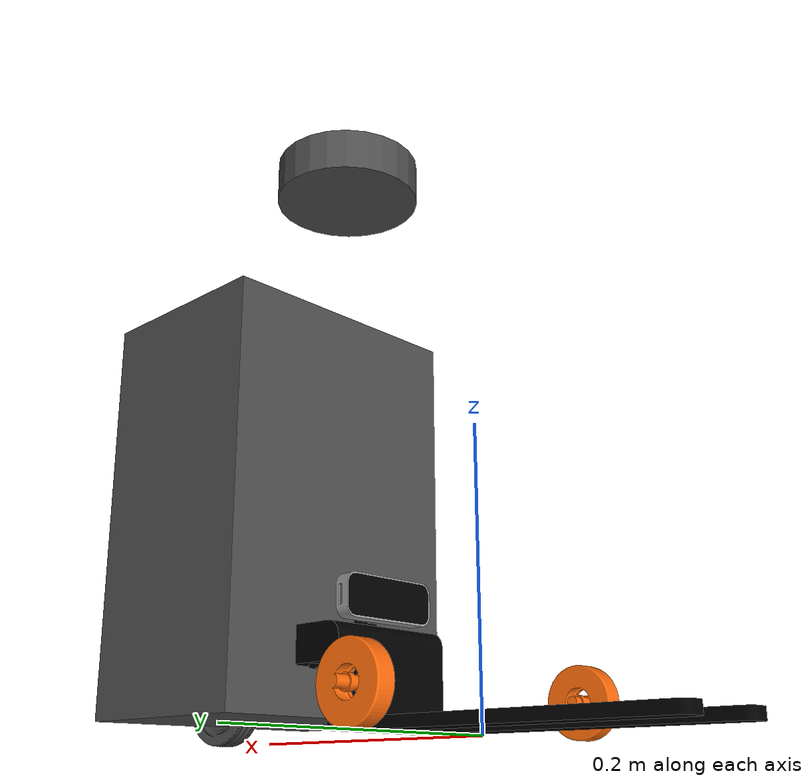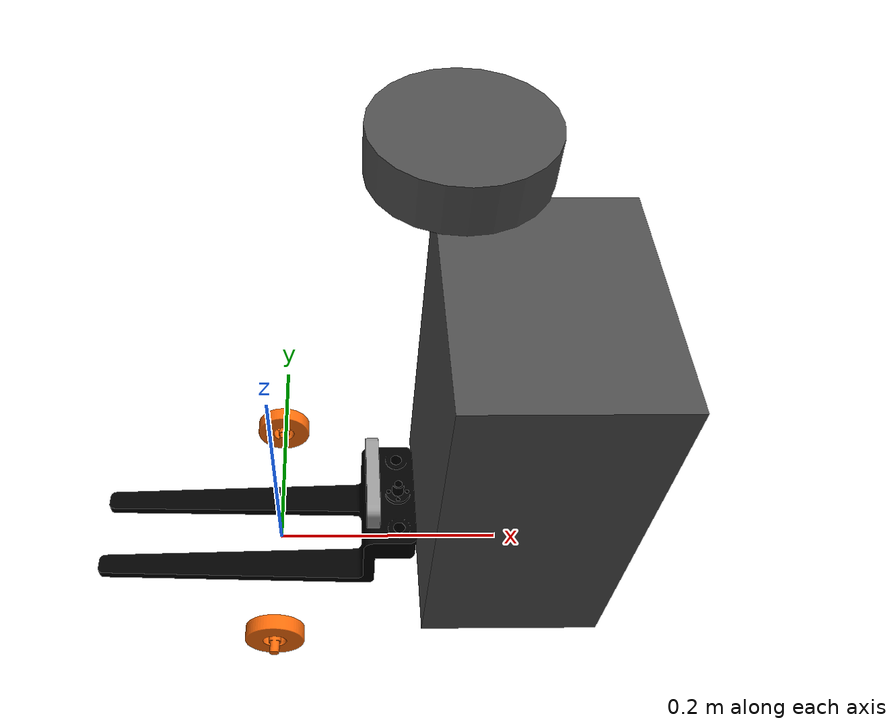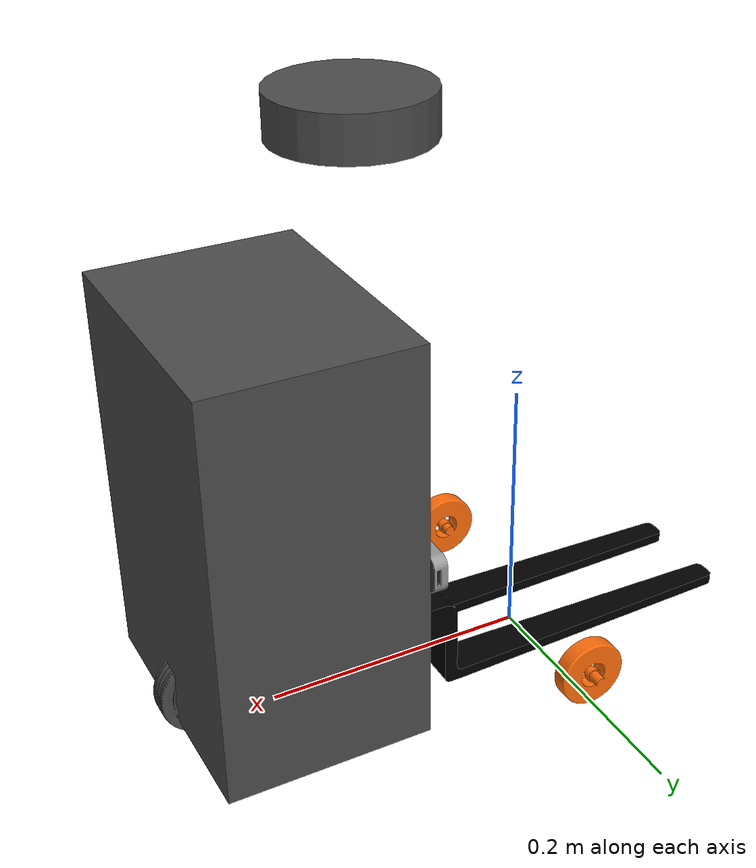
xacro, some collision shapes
<?xml version="1.0"?>

<robot xmlns:xacro="http://ros.org/wiki/xacro" name="dyno_forklift" >
  <xacro:arg name="use_ros_control_for_base" default="true"/>
  <xacro:arg name="base_variant" default="default"/>

  <xacro:include filename="../urdf/materials/materials.xacro"/>
  <xacro:include filename="../urdf/utils.urdf.xacro"/>
  <xacro:include filename="../urdf/plugins.gazebo.xacro"/>

  <!-- Set up definitions of parts of robot body -->
  <xacro:include filename="../urdf/base/forklift_base.urdf.xacro"/>
  <xacro:include filename="../urdf/sensors/lds_lfcd.urdf.xacro"/>
  <xacro:include filename="../urdf/sensors/leap_motion.urdf.xacro"/>
  <xacro:include filename="../urdf/sensors/vive_tracker.urdf.xacro"/>
  <xacro:include filename="../urdf/sensors/imu.urdf.xacro"/>

  <!-- Use macros to define the actual robot -->
  <base/>

  <!-- Laser Scanner -->
  <lds_lfcd name="base_scan" x_offset="0.11" y_offset="0" z_offset="0.41" yaw_offset="0" parent="base_link"/>

  <!-- Vive Tracker -->

  <!-- Leap Motion -->
  <leap_motion name="leap_motion" x_offset="-0.017" y_offset="0" z_offset="0.08" yaw_offset="${M_PI}" parent="fork_link"/>

  <!-- Imu -->
  <imu x_offset="0" y_offset="0" z_offset="0"/>

</robot>

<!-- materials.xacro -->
<robot>
  <material name="black">
      <color rgba="0.0 0.0 0.0 1.0"/>
  </material>

  <material name="dark">
    <color rgba="0.3 0.3 0.3 1.0"/>
  </material>
  <material name="light_black">
    <color rgba="0.4 0.4 0.4 1.0"/>
  </material>

  <material name="blue">
    <color rgba="0.0 0.0 0.8 1.0"/>
  </material>

  <material name="light_blue">
    <color rgba="0.3 0.3 0.8 1.0"/>
  </material>

  <material name="green">
    <color rgba="0.0 0.8 0.0 1.0"/>
  </material>

  <material name="grey">
    <color rgba="0.5 0.5 0.5 1.0"/>
  </material>

  <material name="orange">
    <color rgba="${255/255} ${108/255} ${10/255} 1.0"/>
  </material>

  <material name="brown">
    <color rgba="${222/255} ${207/255} ${195/255} 1.0"/>
  </material>

  <material name="red">
    <color rgba="0.8 0.0 0.0 1.0"/>
  </material>

  <material name="white">
    <color rgba="1.0 1.0 1.0 1.0"/>
  </material>

</robot>

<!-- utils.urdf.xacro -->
<robot xmlns:xacro="http://ros.org/wiki/xacro">

  <!-- Constants -->
  <xacro:property name="M_PI" value="3.1415926535897931"/>

  <!-- Inertia -->
  <xacro:macro name="cylinder_inertia" params="m r h">
    <inertia ixx="${m*(3*r*r+h*h)/12}" ixy="0" ixz="0" iyy="${m*(3*r*r+h*h)/12}" iyz="0" izz="${m*r*r/2}"/>
  </xacro:macro>

  <xacro:macro name="box_inertia" params="m x y z">
    <inertia ixx="${m*(y*y+z*z)/12}" ixy="0" ixz="0" iyy="${m*(z*z+x*x)/12}" iyz="0" izz="${m*(x*x+y*y)/12}"/>
  </xacro:macro>

  <xacro:macro name="simple_transmission" params="name interface" >
    <transmission name="${name}_trans">
      <type>transmission_interface/SimpleTransmission</type>
      <joint name="${name}">
        <hardwareInterface>hardware_interface/${interface}</hardwareInterface>
      </joint>
      <actuator name="${name}_motor">
        <mechanicalReduction>10</mechanicalReduction>
        <hardwareInterface>hardware_interface/${interface}</hardwareInterface>
      </actuator>
    </transmission>
  </xacro:macro>
</robot>

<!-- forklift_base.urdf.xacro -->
<!-- Dyno Magni base -->

<robot xmlns:xacro="http://ros.org/wiki/xacro">

  <xacro:include filename="forklift_base.gazebo.xacro"/>

  <xacro:include filename="../wheels/forklift/support_wheel.urdf.xacro"/>
  <xacro:include filename="../wheels/forklift/drive_wheel_assembly.urdf.xacro"/>

  <!-- Base -->
  <xacro:macro name="base">
    <link name="base_link">
      <visual>
        <origin xyz="0 0 0" rpy="0 0 0"/>
        <geometry>
          <mesh filename="package://dyno_description/meshes/bases/forklift_base.stl" scale="0.01 0.01 0.01"/>
        </geometry>
        <material name="dark"/>
      </visual>

      <collision>
        <origin xyz="0.2 0 0.14" rpy="0 0 0"/>
        <geometry>
          <box size="0.15 0.2 0.3"/>
        </geometry>
        <material name="orange"/>
      </collision>

      <!-- Set high weight and low intertia for gazebot simulation -->
      <inertial>
        <origin xyz="0.13 0 0" rpy="0 0 0"/>
        <mass value="10.0"/>
        <box_inertia m="0.1" x="0.3" y="0.25" z="0.1"/>
      </inertial>
    </link>

    <!-- Base footprint -->
    <link name="base_footprint"/>

    <joint name="base_footprint_joint" type="fixed">
      <origin xyz="0 0 0.025" rpy="0 0 0"/>
      <parent link="base_footprint"/>
      <child link="base_link"/>
    </joint>

    <!-- Fork -->
    <joint name="fork_joint" type="prismatic">
      <origin xyz="0.106 0 -0.013" rpy="0 0 0"/>
      <parent link="base_link"/>
      <child link="fork_link"/>
      <axis xyz="0 0 1"/>
      <limit effort="1000.0" lower="0" upper="1.0" velocity="0.05"/>
    </joint>

    <link name="fork_link">
      <visual>
        <origin xyz="0 0 0" rpy="0 0 ${M_PI}"/>
        <geometry>
          <mesh filename="package://dyno_description/meshes/bases/forklift_fork.stl" scale="0.01 0.01 0.01"/>
        </geometry>
        <material name="black"/>
      </visual>

      <collision>
        <origin xyz="-0.15 0 -0.004" rpy="0 0 0"/>
        <geometry>
          <box size="0.24 0.1 0.008"/>
        </geometry>
        <material name="orange"/>
      </collision>

      <inertial>
        <origin xyz="-0.16 0 0" rpy="0 0 0"/>
        <mass value="0.02"/>
        <box_inertia m="0.002" x="0.23" y="0.1" z="0.008"/>
      </inertial>
    </link>

    <xacro:if value="$(arg use_ros_control_for_base)">
      <xacro:simple_transmission name="fork_joint" interface="PositionJointInterface"/>
    </xacro:if>

    <!-- Macros -->
    <xacro:property name="support_wheel_separation" value="0.217"/>

    <support_wheel name="support_wheel_right" separation="${support_wheel_separation}" reflect="1.0" parent="base_link"/>
    <support_wheel name="support_wheel_left"  separation="${support_wheel_separation}" reflect="-1.0" parent="base_link"/>

    <drive_wheel_assembly/>

    <!-- Gazebo extentions -->
    <base_gazebo/>
  </xacro:macro>

</robot>

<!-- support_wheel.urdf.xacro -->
<robot xmlns:xacro="http://ros.org/wiki/xacro">

  <xacro:include filename="support_wheel.gazebo.xacro"/>

  <xacro:macro name="support_wheel" params="name separation reflect parent">

    <xacro:property name="radius" value="0.025"/>
    <xacro:property name="width" value="0.011"/>
    <xacro:property name="mass" value="0.1"/>

    <link name="${name}_link">
      <visual>
        <origin xyz="0 0 0" rpy="0 0 0"/>
        <geometry>
          <mesh filename="package://dyno_description/meshes/wheels/forklift_support_wheel.stl" scale="0.01 0.01 0.01"/>
        </geometry>
        <material name="orange"/>
      </visual>

      <collision>
        <origin xyz="0 0 0" rpy="0 0 0"/>
        <geometry>
          <cylinder radius="${radius}" length="${width}"/>
        </geometry>
        <material name="orange"/>
      </collision>

      <inertial>
        <origin xyz="0 0 0" rpy="0 0 0"/>
        <mass value="${mass}"/>
        <cylinder_inertia m="${mass}" r="${radius}" h="${width}" />
      </inertial>

    </link>

    <joint name="${name}_joint" type="continuous">
      <origin xyz="0 ${-separation / 2 * reflect} 0" rpy="${pi/2 * reflect} 0 0"/>
      <parent link="${parent}"/>
      <child link="${name}_link"/>
      <axis xyz="0 0 1"/>
      <limit effort="10000" velocity="10000"/>
    </joint>

    <!-- Transmission -->

    <xacro:if value="$(arg use_ros_control_for_base)">
      <xacro:simple_transmission name="${name}_joint" interface="EffortJointInterface"/>
    </xacro:if>

    <!-- Gazebo extensions -->
    <drive_wheel_gazebo name="${name}"/>

  </xacro:macro>
</robot>

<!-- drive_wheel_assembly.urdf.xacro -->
<!-- Guidebot differential drive base -->

<robot xmlns:xacro="http://ros.org/wiki/xacro">
  <xacro:include filename="drive_wheel_assembly.gazebo.xacro"/>

  <!-- Wheel Assembly -->
  <xacro:macro name="drive_wheel_assembly">

    <xacro:property name="dynamixel_effort" value="1.5"/>
    <xacro:property name="dynamixel_velocity" value="4.0"/>

    <!-- Wheel characteristics -->
    <xacro:property name="wheel_radius" value="0.033"/>
    <xacro:property name="wheel_width" value="0.0178"/>

    <!-- Wheel-->
    <joint name="drive_wheel_joint" type="continuous">
      <origin xyz="0 0 -0.0453" rpy="${-M_PI/2} 0 0"/>
      <axis xyz="0 0 1"/>
      <limit effort="${dynamixel_effort*500}" velocity="${dynamixel_velocity*100}"/>
      <dynamics damping="0.0" friction="0.0"/>
      <parent link="steer_link"/>
      <child link="drive_wheel_link"/>
    </joint>

    <xacro:if value="$(arg use_ros_control_for_base)">
      <xacro:simple_transmission name="drive_wheel_joint" interface="VelocityJointInterface"/>
    </xacro:if>

    <link name="drive_wheel_link">
      <inertial>
        <mass value="0.1"/>
        <origin xyz="0 0 0"/>
        <cylinder_inertia m="0.1" r="${wheel_radius}" h="${wheel_width}"/>
      </inertial>
      <visual>
        <geometry>
          <mesh filename="package://dyno_description/meshes/wheels/forklift_drive_wheel.stl" scale="0.01 0.01 0.01"/>
        </geometry>
        <material name="DarkGrey"/>
      </visual>
      <collision>
        <geometry>
          <cylinder length="${wheel_width}" radius="${wheel_radius}"/>
        </geometry>
      </collision>
    </link>

    <!-- Wheel Steer -->
    <joint name="steer_joint" type="revolute">
      <axis xyz="0 0 1"/>
      <limit lower="${-90*M_PI/180.0}" upper="${90*M_PI/180.0}" effort="${dynamixel_effort}" velocity="${dynamixel_velocity}"/>
      <dynamics damping="0.0" friction="0.0"/>
      <origin xyz="0.2537 0 0.053" rpy="0 0 0"/>
      <parent link="base_link"/>
      <child link="steer_link"/>
    </joint>

    <xacro:if value="$(arg use_ros_control_for_base)">
      <xacro:simple_transmission name="steer_joint" interface="PositionJointInterface"/>
    </xacro:if>

    <link name="steer_link">
      <inertial>
        <mass value="0.1"/>
        <origin xyz="0 0 0" rpy="0 0 0"/>
        <cylinder_inertia m="0.1" r="0.015" h="0.1"/>
      </inertial>
      <visual>
        <origin xyz="0 0 0" rpy="0 0 0"/>
        <geometry>
          <mesh filename="package://dyno_description/meshes/bases/forklift_steer.stl" scale="0.01 0.01 0.01"/>
        </geometry>
        <material name="light_blue"/>
      </visual>
    </link>

  </xacro:macro>

</robot>

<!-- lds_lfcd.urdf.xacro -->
<robot xmlns:xacro="http://ros.org/wiki/xacro">
  <xacro:include filename="lds_lfcd.gazebo.xacro"/>

  <xacro:macro name="lds_lfcd" params="name x_offset y_offset z_offset yaw_offset parent">
    <joint name="${name}_joint" type="fixed">
      <parent link="${parent}"/>
      <child link="${name}_link"/>
      <origin xyz="${x_offset} ${y_offset} ${z_offset}" rpy="0 0 ${yaw_offset}"/>
    </joint>

    <link name="${name}_link">
      <visual>
        <origin xyz="0 0 0.0" rpy="0 0 0"/>
        <geometry>
          <mesh filename="package://dyno_description/meshes/sensors/lds.stl" scale="0.001 0.001 0.001"/>
        </geometry>
        <material name="dark"/>
      </visual>

      <collision>
        <origin xyz="0.015 0 -0.0065" rpy="0 0 0"/>
        <geometry>
          <cylinder length="0.0315" radius="0.055"/>
        </geometry>
      </collision>

      <inertial>
        <mass value="0.114" />
        <origin xyz="0 0 0" />
        <inertia ixx="0.001" ixy="0.0" ixz="0.0"
                 iyy="0.001" iyz="0.0"
                 izz="0.001" />
      </inertial>
    </link>

    <lds_lfcd_gazebo name="${name}"/>
  </xacro:macro>

</robot>

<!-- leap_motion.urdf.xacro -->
<robot xmlns:xacro="http://ros.org/wiki/xacro">
  <xacro:include filename="leap_motion.gazebo.xacro"/>

  <xacro:macro name="leap_motion" params="name x_offset y_offset z_offset yaw_offset parent">
    <joint name="${name}_joint" type="fixed">
      <parent link="${parent}"/>
      <child link="${name}_link"/>
      <origin xyz="${x_offset} ${y_offset} ${z_offset}" rpy="0 0 ${yaw_offset}"/>
    </joint>

    <link name="${name}_link">
      <visual>
        <origin xyz="0 0 0.0" rpy="0 0 0"/>
        <geometry>
          <mesh filename="package://dyno_description/meshes/sensors/leap_motion.dae" scale="0.01 0.01 0.01"/>
        </geometry>
      </visual>
    </link>

    <leap_motion_gazebo name="${name}"/>
  </xacro:macro>

</robot>

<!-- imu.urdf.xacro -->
<robot xmlns:xacro="http://ros.org/wiki/xacro">

  <xacro:include filename="imu.gazebo.xacro"/>
  <xacro:macro name="imu" params="x_offset y_offset z_offset">

    <link name="imu_link">
      <visual>
        <origin xyz="0 0 0.0" rpy="0 0 0"/>
        <geometry>
          <cylinder length="0.001" radius="0.001"/>
        </geometry>
      </visual>
      <inertial>
        <origin xyz="0 0 0" rpy="0 0 0"/>
        <mass value="0.001"/>
        <box_inertia m="0.001" x="0.01" y="0.01" z="0.002"/>
      </inertial>
    </link>

    <joint name="imu_joint" type="fixed">
      <origin xyz="${x_offset} ${y_offset} ${z_offset}" rpy="0 0 0"/>
      <parent link="base_link"/>
      <child link="imu_link"/>
    </joint>

  </xacro:macro>

</robot>
